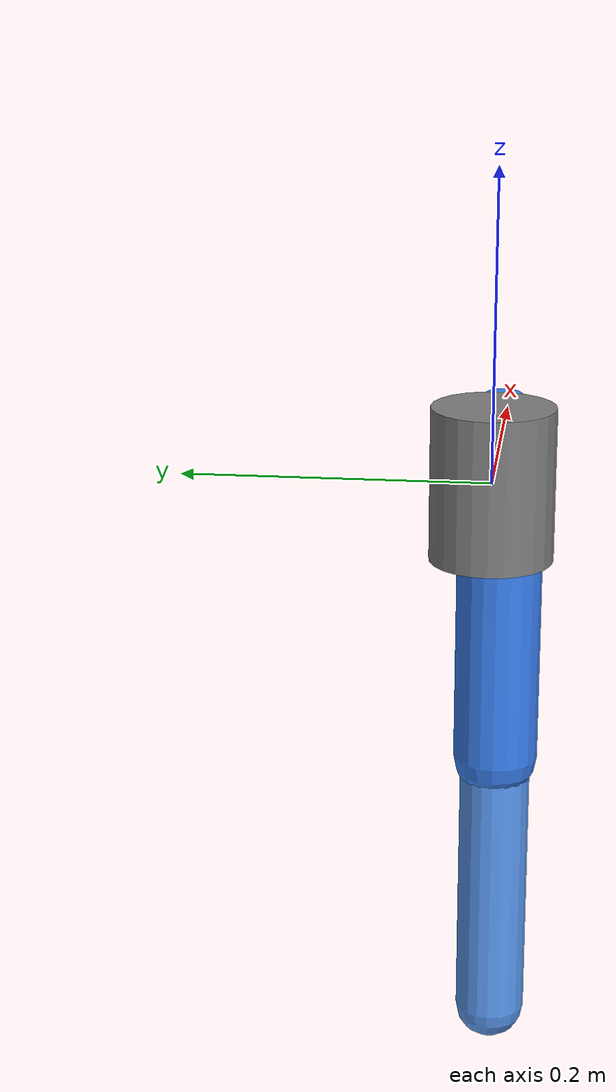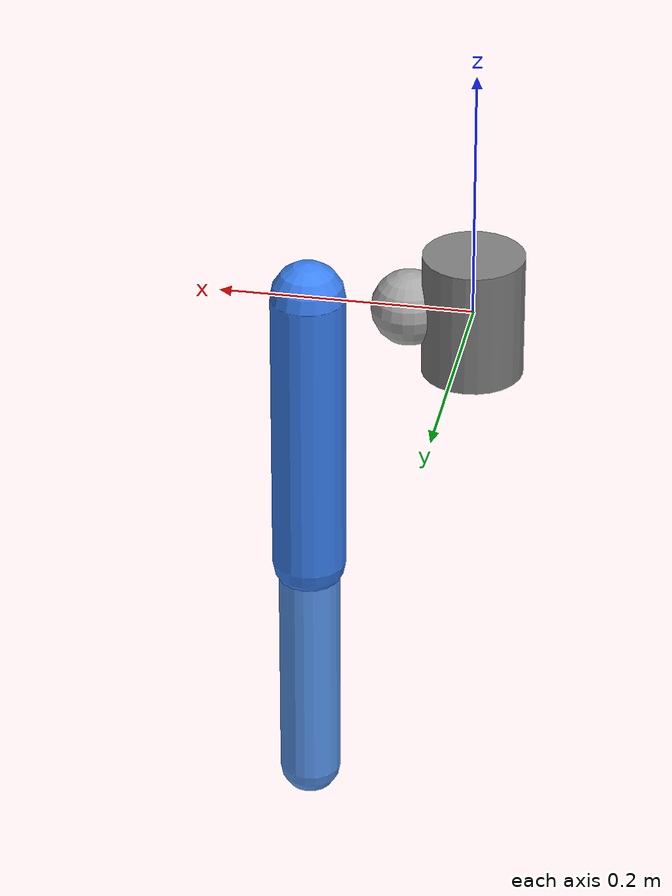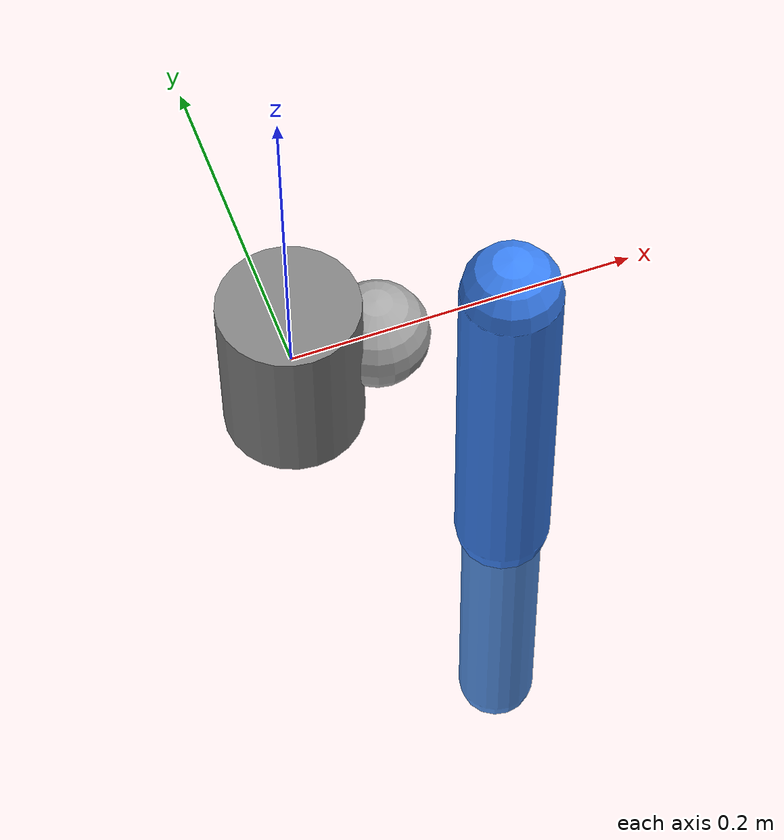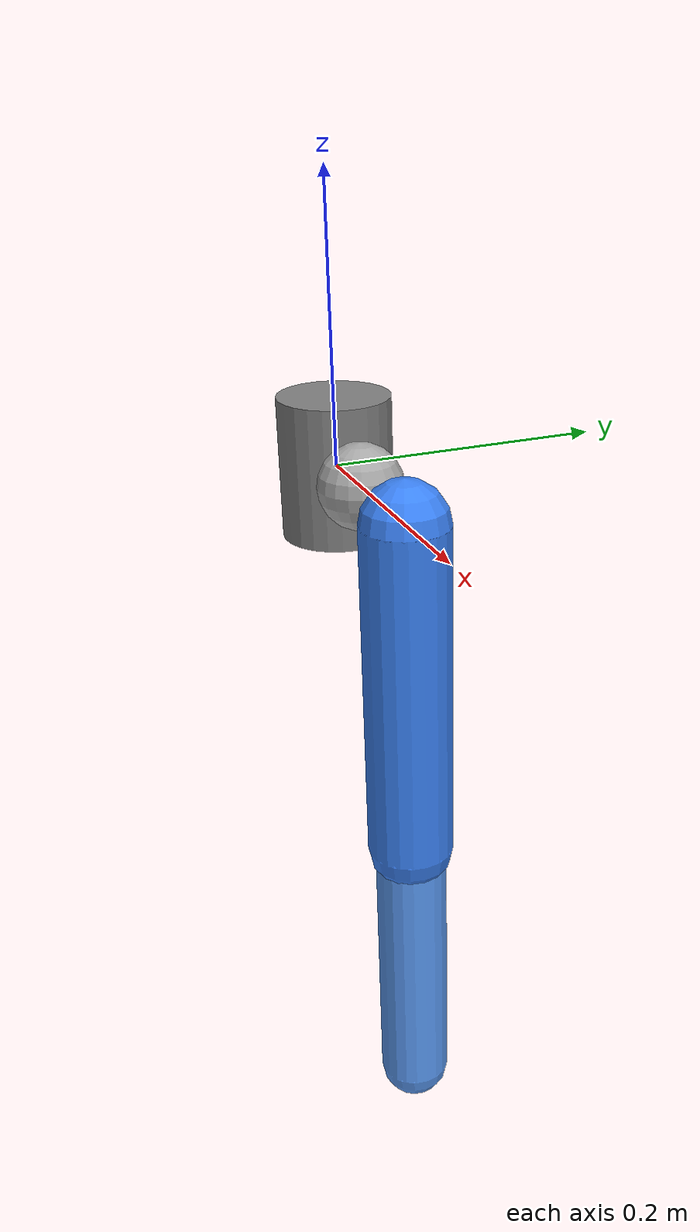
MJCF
<mujoco model="arm_4dof_right">
  <!-- Mirrors assets/urdf/arm_4dof_right.urdf joint order and axes (pitch Y, roll X, yaw Z, elbow Y). -->
  <compiler angle="radian"/>
  <option gravity="0 0 -9.81"/>
  <worldbody>
    <body name="base_link">
      <geom type="cylinder" size="0.04 0.05" rgba="0.5 0.5 0.5 1"/>
      <body name="right_shoulder_pitch_link" pos="0 0 0">
        <joint name="right_shoulder_pitch" type="hinge" axis="0 1 0" range="-0.9 3.25"/>
        <geom type="sphere" size="0.03" rgba="0.6 0.6 0.6 1"/>
        <body name="right_shoulder_roll_link" pos="0.05 0 0">
          <joint name="right_shoulder_roll" type="hinge" axis="1 0 0" range="-0.05 3.14159"/>
          <geom type="sphere" size="0.03" rgba="0.65 0.65 0.65 1"/>
          <body name="right_upper_arm_link" pos="0.08 0 0">
            <joint name="right_upper_arm_yaw" type="hinge" axis="0 0 1" range="-1.57 1.57"/>
            <geom type="capsule" fromto="0 0 0 0 0 -0.24" size="0.03" rgba="0.23 0.51 0.96 1"/>
            <body name="right_forearm_link" pos="0 0 -0.24">
              <joint name="right_elbow_pitch" type="hinge" axis="0 1 0" range="0 1.2"/>
              <geom type="capsule" fromto="0 0 0 0 0 -0.2" size="0.025" rgba="0.35 0.6 0.95 1"/>
            </body>
          </body>
        </body>
      </body>
    </body>
  </worldbody>
</mujoco>
